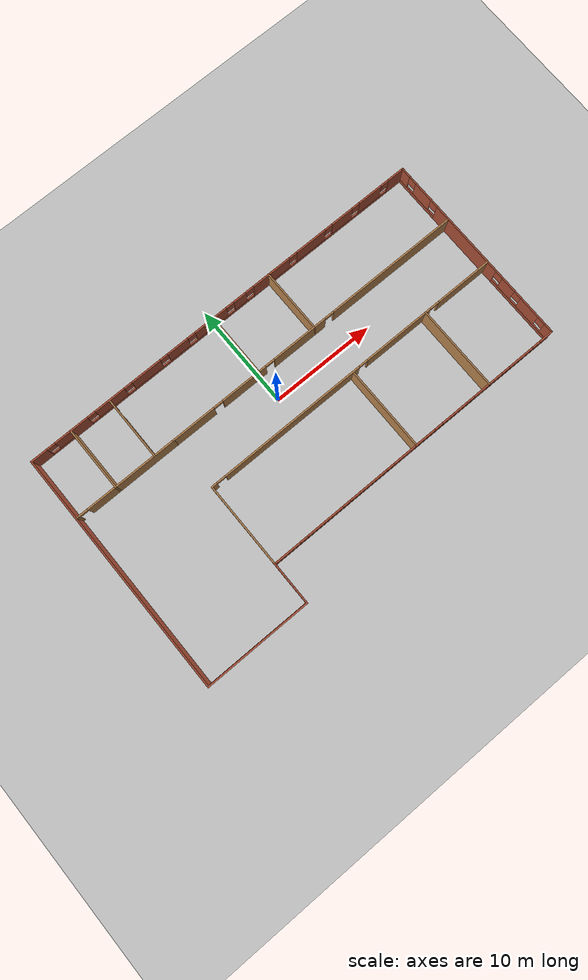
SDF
<sdf version="1.6">
 <world name="default">
  <model name="ground_plane">
   <static>1</static>
   <link name="link">
    <collision name="collision">
     <geometry><plane><normal>0 0 1</normal><size>100 100</size></plane></geometry>
     <surface><friction><ode><mu>100</mu><mu2>50</mu2></ode></friction></surface>
    </collision>
    <visual name="visual">
     <cast_shadows>0</cast_shadows>
     <geometry><plane><normal>0 0 1</normal><size>100 100</size></plane></geometry>
     <material>
      <script><uri>file://media/materials/scripts/gazebo.material</uri><name>Gazebo/Grey</name></script>
     </material>
    </visual>
   </link>
  </model>
  <model name="research_lab">
   <pose>1.02578 -3.01418 0 0 -0 0</pose>
   <link name="Wall_0">
    <pose>5 0.5 0 0 -0 3.14159</pose>
    <visual name="Wall_0_Visual_0">
     <pose>-12.265 0 1.25 0 -0 0</pose>
     <geometry><box><size>5.61997 0.15 2.5</size></box></geometry>
     <material>
      <script><uri>file://media/materials/scripts/gazebo.material</uri><name>Gazebo/Wood</name></script>
      <ambient>0.666667 0.333333 0 1</ambient>
     </material>
     <meta><layer>0</layer></meta>
    </visual>
    <collision name="Wall_0_Collision_0">
     <geometry><box><size>5.61997 0.15 2.5</size></box></geometry>
     <pose>-12.265 0 1.25 0 -0 0</pose>
    </collision>
    <visual name="Wall_0_Visual_1">
     <pose>-5.07203 0 1.25 0 -0 0</pose>
     <geometry><box><size>6.966 0.15 2.5</size></box></geometry>
     <material>
      <script><uri>file://media/materials/scripts/gazebo.material</uri><name>Gazebo/Wood</name></script>
      <ambient>0.666667 0.333333 0 1</ambient>
     </material>
     <meta><layer>0</layer></meta>
    </visual>
    <collision name="Wall_0_Collision_1">
     <geometry><box><size>6.966 0.15 2.5</size></box></geometry>
     <pose>-5.07203 0 1.25 0 -0 0</pose>
    </collision>
    <visual name="Wall_0_Visual_2">
     <pose>6.45097 0 1.25 0 -0 0</pose>
     <geometry><box><size>14.28 0.15 2.5</size></box></geometry>
     <material>
      <script><uri>file://media/materials/scripts/gazebo.material</uri><name>Gazebo/Wood</name></script>
      <ambient>0.666667 0.333333 0 1</ambient>
     </material>
     <meta><layer>0</layer></meta>
    </visual>
    <collision name="Wall_0_Collision_2">
     <geometry><box><size>14.28 0.15 2.5</size></box></geometry>
     <pose>6.45097 0 1.25 0 -0 0</pose>
    </collision>
    <visual name="Wall_0_Visual_3">
     <pose>14.783 0 1.25 0 -0 0</pose>
     <geometry><box><size>0.58403 0.15 2.5</size></box></geometry>
     <material>
      <script><uri>file://media/materials/scripts/gazebo.material</uri><name>Gazebo/Wood</name></script>
      <ambient>0.666667 0.333333 0 1</ambient>
     </material>
     <meta><layer>0</layer></meta>
    </visual>
    <collision name="Wall_0_Collision_3">
     <geometry><box><size>0.58403 0.15 2.5</size></box></geometry>
     <pose>14.783 0 1.25 0 -0 0</pose>
    </collision>
    <visual name="Wall_0_Visual_4">
     <pose>-9.00503 0 2.25 0 -0 0</pose>
     <geometry><box><size>0.9 0.15 0.5</size></box></geometry>
     <material>
      <script><uri>file://media/materials/scripts/gazebo.material</uri><name>Gazebo/Wood</name></script>
      <ambient>0.666667 0.333333 0 1</ambient>
     </material>
     <meta><layer>0</layer></meta>
    </visual>
    <collision name="Wall_0_Collision_4">
     <geometry><box><size>0.9 0.15 0.5</size></box></geometry>
     <pose>-9.00503 0 2.25 0 -0 0</pose>
    </collision>
    <visual name="Wall_0_Visual_5">
     <pose>-1.13903 0 2.25 0 -0 0</pose>
     <geometry><box><size>0.9 0.15 0.5</size></box></geometry>
     <material>
      <script><uri>file://media/materials/scripts/gazebo.material</uri><name>Gazebo/Wood</name></script>
      <ambient>0.666667 0.333333 0 1</ambient>
     </material>
     <meta><layer>0</layer></meta>
    </visual>
    <collision name="Wall_0_Collision_5">
     <geometry><box><size>0.9 0.15 0.5</size></box></geometry>
     <pose>-1.13903 0 2.25 0 -0 0</pose>
    </collision>
    <visual name="Wall_0_Visual_6">
     <pose>14.041 0 2.25 0 -0 0</pose>
     <geometry><box><size>0.9 0.15 0.5</size></box></geometry>
     <material>
      <script><uri>file://media/materials/scripts/gazebo.material</uri><name>Gazebo/Wood</name></script>
      <ambient>0.666667 0.333333 0 1</ambient>
     </material>
     <meta><layer>0</layer></meta>
    </visual>
    <collision name="Wall_0_Collision_6">
     <geometry><box><size>0.9 0.15 0.5</size></box></geometry>
     <pose>14.041 0 2.25 0 -0 0</pose>
    </collision>
   </link>
   <link name="Wall_10">
    <pose>16.5 -7.5 0 0 -0 3.14159</pose>
    <visual name="Wall_10_Visual_0">
     <pose>-2.84774 0 1.25 0 -0 0</pose>
     <geometry><box><size>1.45451 0.15 2.5</size></box></geometry>
     <material>
      <script><uri>file://media/materials/scripts/gazebo.material</uri><name>Gazebo/Bricks</name></script>
      <ambient>1 1 1 1</ambient>
     </material>
     <meta><layer>0</layer></meta>
    </visual>
    <collision name="Wall_10_Collision_0">
     <geometry><box><size>1.45451 0.15 2.5</size></box></geometry>
     <pose>-2.84774 0 1.25 0 -0 0</pose>
    </collision>
    <visual name="Wall_10_Visual_1">
     <pose>0.727257 0 0.25 0 -0 0</pose>
     <geometry><box><size>5.69549 0.15 0.5</size></box></geometry>
     <material>
      <script><uri>file://media/materials/scripts/gazebo.material</uri><name>Gazebo/Bricks</name></script>
      <ambient>1 1 1 1</ambient>
     </material>
     <meta><layer>0</layer></meta>
    </visual>
    <collision name="Wall_10_Collision_1">
     <geometry><box><size>5.69549 0.15 0.5</size></box></geometry>
     <pose>0.727257 0 0.25 0 -0 0</pose>
    </collision>
    <visual name="Wall_10_Visual_2">
     <pose>-0.041486 0 1.5 0 -0 0</pose>
     <geometry><box><size>2.558 0.15 2</size></box></geometry>
     <material>
      <script><uri>file://media/materials/scripts/gazebo.material</uri><name>Gazebo/Bricks</name></script>
      <ambient>1 1 1 1</ambient>
     </material>
     <meta><layer>0</layer></meta>
    </visual>
    <collision name="Wall_10_Collision_2">
     <geometry><box><size>2.558 0.15 2</size></box></geometry>
     <pose>-0.041486 0 1.5 0 -0 0</pose>
    </collision>
    <visual name="Wall_10_Visual_3">
     <pose>2.80626 0 1.5 0 -0 0</pose>
     <geometry><box><size>1.53749 0.15 2</size></box></geometry>
     <material>
      <script><uri>file://media/materials/scripts/gazebo.material</uri><name>Gazebo/Bricks</name></script>
      <ambient>1 1 1 1</ambient>
     </material>
     <meta><layer>0</layer></meta>
    </visual>
    <collision name="Wall_10_Collision_3">
     <geometry><box><size>1.53749 0.15 2</size></box></geometry>
     <pose>2.80626 0 1.5 0 -0 0</pose>
    </collision>
    <visual name="Wall_10_Visual_4">
     <pose>-1.72049 0 1.9 0 -0 0</pose>
     <geometry><box><size>0.8 0.15 1.2</size></box></geometry>
     <material>
      <script><uri>file://media/materials/scripts/gazebo.material</uri><name>Gazebo/Bricks</name></script>
      <ambient>1 1 1 1</ambient>
     </material>
     <meta><layer>0</layer></meta>
    </visual>
    <collision name="Wall_10_Collision_4">
     <geometry><box><size>0.8 0.15 1.2</size></box></geometry>
     <pose>-1.72049 0 1.9 0 -0 0</pose>
    </collision>
    <visual name="Wall_10_Visual_5">
     <pose>1.63751 0 1.9 0 -0 0</pose>
     <geometry><box><size>0.8 0.15 1.2</size></box></geometry>
     <material>
      <script><uri>file://media/materials/scripts/gazebo.material</uri><name>Gazebo/Bricks</name></script>
      <ambient>1 1 1 1</ambient>
     </material>
     <meta><layer>0</layer></meta>
    </visual>
    <collision name="Wall_10_Collision_5">
     <geometry><box><size>0.8 0.15 1.2</size></box></geometry>
     <pose>1.63751 0 1.9 0 -0 0</pose>
    </collision>
   </link>
   <link name="Wall_11">
    <collision name="Wall_11_Collision">
     <geometry><box><size>8.15 0.15 2.5</size></box></geometry>
     <pose>0 0 1.25 0 -0 0</pose>
    </collision>
    <visual name="Wall_11_Visual">
     <pose>0 0 1.25 0 -0 0</pose>
     <geometry><box><size>8.15 0.15 2.5</size></box></geometry>
     <material>
      <script><uri>file://media/materials/scripts/gazebo.material</uri><name>Gazebo/Wood</name></script>
      <ambient>1 1 1 1</ambient>
     </material>
     <meta><layer>0</layer></meta>
    </visual>
    <pose>13 -3.5 0 0 -0 1.5708</pose>
   </link>
   <link name="Wall_13">
    <pose>9 -7.5 0 0 -0 3.14159</pose>
    <visual name="Wall_13_Visual_0">
     <pose>-3.21374 0 1.25 0 -0 0</pose>
     <geometry><box><size>1.72251 0.15 2.5</size></box></geometry>
     <material>
      <script><uri>file://media/materials/scripts/gazebo.material</uri><name>Gazebo/Bricks</name></script>
      <ambient>1 1 1 1</ambient>
     </material>
     <meta><layer>0</layer></meta>
    </visual>
    <collision name="Wall_13_Collision_0">
     <geometry><box><size>1.72251 0.15 2.5</size></box></geometry>
     <pose>-3.21374 0 1.25 0 -0 0</pose>
    </collision>
    <visual name="Wall_13_Visual_1">
     <pose>0.861257 0 0.25 0 -0 0</pose>
     <geometry><box><size>6.42749 0.15 0.5</size></box></geometry>
     <material>
      <script><uri>file://media/materials/scripts/gazebo.material</uri><name>Gazebo/Bricks</name></script>
      <ambient>1 1 1 1</ambient>
     </material>
     <meta><layer>0</layer></meta>
    </visual>
    <collision name="Wall_13_Collision_1">
     <geometry><box><size>6.42749 0.15 0.5</size></box></geometry>
     <pose>0.861257 0 0.25 0 -0 0</pose>
    </collision>
    <visual name="Wall_13_Visual_2">
     <pose>-0.204486 0 1.5 0 -0 0</pose>
     <geometry><box><size>2.696 0.15 2</size></box></geometry>
     <material>
      <script><uri>file://media/materials/scripts/gazebo.material</uri><name>Gazebo/Bricks</name></script>
      <ambient>1 1 1 1</ambient>
     </material>
     <meta><layer>0</layer></meta>
    </visual>
    <collision name="Wall_13_Collision_2">
     <geometry><box><size>2.696 0.15 2</size></box></geometry>
     <pose>-0.204486 0 1.5 0 -0 0</pose>
    </collision>
    <visual name="Wall_13_Visual_3">
     <pose>3.00926 0 1.5 0 -0 0</pose>
     <geometry><box><size>2.13149 0.15 2</size></box></geometry>
     <material>
      <script><uri>file://media/materials/scripts/gazebo.material</uri><name>Gazebo/Bricks</name></script>
      <ambient>1 1 1 1</ambient>
     </material>
     <meta><layer>0</layer></meta>
    </visual>
    <collision name="Wall_13_Collision_3">
     <geometry><box><size>2.13149 0.15 2</size></box></geometry>
     <pose>3.00926 0 1.5 0 -0 0</pose>
    </collision>
    <visual name="Wall_13_Visual_4">
     <pose>-1.95249 0 1.9 0 -0 0</pose>
     <geometry><box><size>0.8 0.15 1.2</size></box></geometry>
     <material>
      <script><uri>file://media/materials/scripts/gazebo.material</uri><name>Gazebo/Bricks</name></script>
      <ambient>1 1 1 1</ambient>
     </material>
     <meta><layer>0</layer></meta>
    </visual>
    <collision name="Wall_13_Collision_4">
     <geometry><box><size>0.8 0.15 1.2</size></box></geometry>
     <pose>-1.95249 0 1.9 0 -0 0</pose>
    </collision>
    <visual name="Wall_13_Visual_5">
     <pose>1.54351 0 1.9 0 -0 0</pose>
     <geometry><box><size>0.8 0.15 1.2</size></box></geometry>
     <material>
      <script><uri>file://media/materials/scripts/gazebo.material</uri><name>Gazebo/Bricks</name></script>
      <ambient>1 1 1 1</ambient>
     </material>
     <meta><layer>0</layer></meta>
    </visual>
    <collision name="Wall_13_Collision_5">
     <geometry><box><size>0.8 0.15 1.2</size></box></geometry>
     <pose>1.54351 0 1.9 0 -0 0</pose>
    </collision>
   </link>
   <link name="Wall_14">
    <collision name="Wall_14_Collision">
     <geometry><box><size>8.15 0.15 2.5</size></box></geometry>
     <pose>0 0 1.25 0 -0 0</pose>
    </collision>
    <visual name="Wall_14_Visual">
     <pose>0 0 1.25 0 -0 0</pose>
     <geometry><box><size>8.15 0.15 2.5</size></box></geometry>
     <material>
      <script><uri>file://media/materials/scripts/gazebo.material</uri><name>Gazebo/Wood</name></script>
      <ambient>1 1 1 1</ambient>
     </material>
     <meta><layer>0</layer></meta>
    </visual>
    <pose>5 -3.5 0 0 -0 1.5708</pose>
   </link>
   <link name="Wall_16">
    <pose>-2.5 -7.5 0 0 -0 3.14159</pose>
    <visual name="Wall_16_Visual_0">
     <pose>-6.32074 0 1.25 0 -0 0</pose>
     <geometry><box><size>2.50851 0.15 2.5</size></box></geometry>
     <material>
      <script><uri>file://media/materials/scripts/gazebo.material</uri><name>Gazebo/Bricks</name></script>
      <ambient>0.666667 0.333333 0 1</ambient>
     </material>
     <meta><layer>0</layer></meta>
    </visual>
    <collision name="Wall_16_Collision_0">
     <geometry><box><size>2.50851 0.15 2.5</size></box></geometry>
     <pose>-6.32074 0 1.25 0 -0 0</pose>
    </collision>
    <visual name="Wall_16_Visual_1">
     <pose>1.25426 0 0.25 0 -0 0</pose>
     <geometry><box><size>12.6415 0.15 0.5</size></box></geometry>
     <material>
      <script><uri>file://media/materials/scripts/gazebo.material</uri><name>Gazebo/Bricks</name></script>
      <ambient>0.666667 0.333333 0 1</ambient>
     </material>
     <meta><layer>0</layer></meta>
    </visual>
    <collision name="Wall_16_Collision_1">
     <geometry><box><size>12.6415 0.15 0.5</size></box></geometry>
     <pose>1.25426 0 0.25 0 -0 0</pose>
    </collision>
    <visual name="Wall_16_Visual_2">
     <pose>-2.34349 0 1.5 0 -0 0</pose>
     <geometry><box><size>3.846 0.15 2</size></box></geometry>
     <material>
      <script><uri>file://media/materials/scripts/gazebo.material</uri><name>Gazebo/Bricks</name></script>
      <ambient>0.666667 0.333333 0 1</ambient>
     </material>
     <meta><layer>0</layer></meta>
    </visual>
    <collision name="Wall_16_Collision_2">
     <geometry><box><size>3.846 0.15 2</size></box></geometry>
     <pose>-2.34349 0 1.5 0 -0 0</pose>
    </collision>
    <visual name="Wall_16_Visual_3">
     <pose>2.23351 0 1.5 0 -0 0</pose>
     <geometry><box><size>3.708 0.15 2</size></box></geometry>
     <material>
      <script><uri>file://media/materials/scripts/gazebo.material</uri><name>Gazebo/Bricks</name></script>
      <ambient>0.666667 0.333333 0 1</ambient>
     </material>
     <meta><layer>0</layer></meta>
    </visual>
    <collision name="Wall_16_Collision_3">
     <geometry><box><size>3.708 0.15 2</size></box></geometry>
     <pose>2.23351 0 1.5 0 -0 0</pose>
    </collision>
    <visual name="Wall_16_Visual_4">
     <pose>6.23126 0 1.5 0 -0 0</pose>
     <geometry><box><size>2.68749 0.15 2</size></box></geometry>
     <material>
      <script><uri>file://media/materials/scripts/gazebo.material</uri><name>Gazebo/Bricks</name></script>
      <ambient>0.666667 0.333333 0 1</ambient>
     </material>
     <meta><layer>0</layer></meta>
    </visual>
    <collision name="Wall_16_Collision_4">
     <geometry><box><size>2.68749 0.15 2</size></box></geometry>
     <pose>6.23126 0 1.5 0 -0 0</pose>
    </collision>
    <visual name="Wall_16_Visual_5">
     <pose>-4.66649 0 1.9 0 -0 0</pose>
     <geometry><box><size>0.8 0.15 1.2</size></box></geometry>
     <material>
      <script><uri>file://media/materials/scripts/gazebo.material</uri><name>Gazebo/Bricks</name></script>
      <ambient>0.666667 0.333333 0 1</ambient>
     </material>
     <meta><layer>0</layer></meta>
    </visual>
    <collision name="Wall_16_Collision_5">
     <geometry><box><size>0.8 0.15 1.2</size></box></geometry>
     <pose>-4.66649 0 1.9 0 -0 0</pose>
    </collision>
    <visual name="Wall_16_Visual_6">
     <pose>-0.020487 0 1.9 0 -0 0</pose>
     <geometry><box><size>0.8 0.15 1.2</size></box></geometry>
     <material>
      <script><uri>file://media/materials/scripts/gazebo.material</uri><name>Gazebo/Bricks</name></script>
      <ambient>0.666667 0.333333 0 1</ambient>
     </material>
     <meta><layer>0</layer></meta>
    </visual>
    <collision name="Wall_16_Collision_6">
     <geometry><box><size>0.8 0.15 1.2</size></box></geometry>
     <pose>-0.020487 0 1.9 0 -0 0</pose>
    </collision>
    <visual name="Wall_16_Visual_7">
     <pose>4.48751 0 1.9 0 -0 0</pose>
     <geometry><box><size>0.8 0.15 1.2</size></box></geometry>
     <material>
      <script><uri>file://media/materials/scripts/gazebo.material</uri><name>Gazebo/Bricks</name></script>
      <ambient>0.666667 0.333333 0 1</ambient>
     </material>
     <meta><layer>0</layer></meta>
    </visual>
    <collision name="Wall_16_Collision_7">
     <geometry><box><size>0.8 0.15 1.2</size></box></geometry>
     <pose>4.48751 0 1.9 0 -0 0</pose>
    </collision>
   </link>
   <link name="Wall_17">
    <collision name="Wall_17_Collision">
     <geometry><box><size>8.15 0.15 2.5</size></box></geometry>
     <pose>0 0 1.25 0 -0 0</pose>
    </collision>
    <visual name="Wall_17_Visual">
     <pose>0 0 1.25 0 -0 0</pose>
     <geometry><box><size>8.15 0.15 2.5</size></box></geometry>
     <material>
      <script><uri>file://media/materials/scripts/gazebo.material</uri><name>Gazebo/Wood</name></script>
      <ambient>0.666667 0.333333 0 1</ambient>
     </material>
     <meta><layer>0</layer></meta>
    </visual>
    <pose>-10 -3.5 0 0 -0 1.5708</pose>
   </link>
   <link name="Wall_19">
    <pose>-15 5.5 0 0 -0 3.14159</pose>
    <visual name="Wall_19_Visual_0">
     <pose>-0.621116 0 1.25 0 -0 0</pose>
     <geometry><box><size>8.90777 0.15 2.5</size></box></geometry>
     <material>
      <script><uri>file://media/materials/scripts/gazebo.material</uri><name>Gazebo/Wood</name></script>
      <ambient>1 1 1 1</ambient>
     </material>
     <meta><layer>0</layer></meta>
    </visual>
    <collision name="Wall_19_Collision_0">
     <geometry><box><size>8.90777 0.15 2.5</size></box></geometry>
     <pose>-0.621116 0 1.25 0 -0 0</pose>
    </collision>
    <visual name="Wall_19_Visual_1">
     <pose>4.90388 0 1.25 0 -0 0</pose>
     <geometry><box><size>0.342232 0.15 2.5</size></box></geometry>
     <material>
      <script><uri>file://media/materials/scripts/gazebo.material</uri><name>Gazebo/Wood</name></script>
      <ambient>1 1 1 1</ambient>
     </material>
     <meta><layer>0</layer></meta>
    </visual>
    <collision name="Wall_19_Collision_1">
     <geometry><box><size>0.342232 0.15 2.5</size></box></geometry>
     <pose>4.90388 0 1.25 0 -0 0</pose>
    </collision>
    <visual name="Wall_19_Visual_2">
     <pose>4.28277 0 2.25 0 -0 0</pose>
     <geometry><box><size>0.9 0.15 0.5</size></box></geometry>
     <material>
      <script><uri>file://media/materials/scripts/gazebo.material</uri><name>Gazebo/Wood</name></script>
      <ambient>1 1 1 1</ambient>
     </material>
     <meta><layer>0</layer></meta>
    </visual>
    <collision name="Wall_19_Collision_2">
     <geometry><box><size>0.9 0.15 0.5</size></box></geometry>
     <pose>4.28277 0 2.25 0 -0 0</pose>
    </collision>
   </link>
   <link name="Wall_20">
    <collision name="Wall_20_Collision">
     <geometry><box><size>17.15 0.15 2.5</size></box></geometry>
     <pose>0 0 1.25 0 -0 0</pose>
    </collision>
    <visual name="Wall_20_Visual">
     <pose>0 0 1.25 0 -0 0</pose>
     <geometry><box><size>17.15 0.15 2.5</size></box></geometry>
     <material>
      <script><uri>file://media/materials/scripts/gazebo.material</uri><name>Gazebo/Bricks</name></script>
      <ambient>1 1 1 1</ambient>
     </material>
     <meta><layer>0</layer></meta>
    </visual>
    <pose>-20 -3 0 0 0 -1.5708</pose>
   </link>
   <link name="Wall_21">
    <collision name="Wall_21_Collision">
     <geometry><box><size>10.15 0.15 2.5</size></box></geometry>
     <pose>0 0 1.25 0 -0 0</pose>
    </collision>
    <visual name="Wall_21_Visual">
     <pose>0 0 1.25 0 -0 0</pose>
     <geometry><box><size>10.15 0.15 2.5</size></box></geometry>
     <material>
      <script><uri>file://media/materials/scripts/gazebo.material</uri><name>Gazebo/Bricks</name></script>
      <ambient>0.666667 0.333333 0 1</ambient>
     </material>
     <meta><layer>0</layer></meta>
    </visual>
    <pose>-15 -11.5 0 0 -0 0</pose>
   </link>
   <link name="Wall_24">
    <pose>20 8.5 0 0 -0 1.5708</pose>
    <visual name="Wall_24_Visual_0">
     <pose>-2.30754 0 1.25 0 -0 0</pose>
     <geometry><box><size>1.53492 0.15 2.5</size></box></geometry>
     <material>
      <script><uri>file://media/materials/scripts/gazebo.material</uri><name>Gazebo/Bricks</name></script>
      <ambient>1 1 1 1</ambient>
     </material>
     <meta><layer>0</layer></meta>
    </visual>
    <collision name="Wall_24_Collision_0">
     <geometry><box><size>1.53492 0.15 2.5</size></box></geometry>
     <pose>-2.30754 0 1.25 0 -0 0</pose>
    </collision>
    <visual name="Wall_24_Visual_1">
     <pose>0.76746 0 0.25 0 -0 0</pose>
     <geometry><box><size>4.61508 0.15 0.5</size></box></geometry>
     <material>
      <script><uri>file://media/materials/scripts/gazebo.material</uri><name>Gazebo/Bricks</name></script>
      <ambient>1 1 1 1</ambient>
     </material>
     <meta><layer>0</layer></meta>
    </visual>
    <collision name="Wall_24_Collision_1">
     <geometry><box><size>4.61508 0.15 0.5</size></box></geometry>
     <pose>0.76746 0 0.25 0 -0 0</pose>
    </collision>
    <visual name="Wall_24_Visual_2">
     <pose>0.23992 0 1.5 0 -0 0</pose>
     <geometry><box><size>1.96 0.15 2</size></box></geometry>
     <material>
      <script><uri>file://media/materials/scripts/gazebo.material</uri><name>Gazebo/Bricks</name></script>
      <ambient>1 1 1 1</ambient>
     </material>
     <meta><layer>0</layer></meta>
    </visual>
    <collision name="Wall_24_Collision_2">
     <geometry><box><size>1.96 0.15 2</size></box></geometry>
     <pose>0.23992 0 1.5 0 -0 0</pose>
    </collision>
    <visual name="Wall_24_Visual_3">
     <pose>2.54746 0 1.5 0 -0 0</pose>
     <geometry><box><size>1.05508 0.15 2</size></box></geometry>
     <material>
      <script><uri>file://media/materials/scripts/gazebo.material</uri><name>Gazebo/Bricks</name></script>
      <ambient>1 1 1 1</ambient>
     </material>
     <meta><layer>0</layer></meta>
    </visual>
    <collision name="Wall_24_Collision_3">
     <geometry><box><size>1.05508 0.15 2</size></box></geometry>
     <pose>2.54746 0 1.5 0 -0 0</pose>
    </collision>
    <visual name="Wall_24_Visual_4">
     <pose>-1.14008 0 1.9 0 -0 0</pose>
     <geometry><box><size>0.8 0.15 1.2</size></box></geometry>
     <material>
      <script><uri>file://media/materials/scripts/gazebo.material</uri><name>Gazebo/Bricks</name></script>
      <ambient>1 1 1 1</ambient>
     </material>
     <meta><layer>0</layer></meta>
    </visual>
    <collision name="Wall_24_Collision_4">
     <geometry><box><size>0.8 0.15 1.2</size></box></geometry>
     <pose>-1.14008 0 1.9 0 -0 0</pose>
    </collision>
    <visual name="Wall_24_Visual_5">
     <pose>1.61992 0 1.9 0 -0 0</pose>
     <geometry><box><size>0.8 0.15 1.2</size></box></geometry>
     <material>
      <script><uri>file://media/materials/scripts/gazebo.material</uri><name>Gazebo/Bricks</name></script>
      <ambient>1 1 1 1</ambient>
     </material>
     <meta><layer>0</layer></meta>
    </visual>
    <collision name="Wall_24_Collision_5">
     <geometry><box><size>0.8 0.15 1.2</size></box></geometry>
     <pose>1.61992 0 1.9 0 -0 0</pose>
    </collision>
   </link>
   <link name="Wall_25">
    <pose>12.5 11.5 0 0 -0 3.14159</pose>
    <visual name="Wall_25_Visual_0">
     <pose>-6.70094 0 1.25 0 -0 0</pose>
     <geometry><box><size>1.74813 0.15 2.5</size></box></geometry>
     <material>
      <script><uri>file://media/materials/scripts/gazebo.material</uri><name>Gazebo/Bricks</name></script>
      <ambient>1 1 1 1</ambient>
     </material>
     <meta><layer>0</layer></meta>
    </visual>
    <collision name="Wall_25_Collision_0">
     <geometry><box><size>1.74813 0.15 2.5</size></box></geometry>
     <pose>-6.70094 0 1.25 0 -0 0</pose>
    </collision>
    <visual name="Wall_25_Visual_1">
     <pose>0.874063 0 0.25 0 -0 0</pose>
     <geometry><box><size>13.4019 0.15 0.5</size></box></geometry>
     <material>
      <script><uri>file://media/materials/scripts/gazebo.material</uri><name>Gazebo/Bricks</name></script>
      <ambient>1 1 1 1</ambient>
     </material>
     <meta><layer>0</layer></meta>
    </visual>
    <collision name="Wall_25_Collision_1">
     <geometry><box><size>13.4019 0.15 0.5</size></box></geometry>
     <pose>0.874063 0 0.25 0 -0 0</pose>
    </collision>
    <visual name="Wall_25_Visual_2">
     <pose>-3.78433 0 1.5 0 -0 0</pose>
     <geometry><box><size>2.48509 0.15 2</size></box></geometry>
     <material>
      <script><uri>file://media/materials/scripts/gazebo.material</uri><name>Gazebo/Bricks</name></script>
      <ambient>1 1 1 1</ambient>
     </material>
     <meta><layer>0</layer></meta>
    </visual>
    <collision name="Wall_25_Collision_2">
     <geometry><box><size>2.48509 0.15 2</size></box></geometry>
     <pose>-3.78433 0 1.5 0 -0 0</pose>
    </collision>
    <visual name="Wall_25_Visual_3">
     <pose>-0.620908 0 1.5 0 -0 0</pose>
     <geometry><box><size>2.24175 0.15 2</size></box></geometry>
     <material>
      <script><uri>file://media/materials/scripts/gazebo.material</uri><name>Gazebo/Bricks</name></script>
      <ambient>1 1 1 1</ambient>
     </material>
     <meta><layer>0</layer></meta>
    </visual>
    <collision name="Wall_25_Collision_3">
     <geometry><box><size>2.24175 0.15 2</size></box></geometry>
     <pose>-0.620908 0 1.5 0 -0 0</pose>
    </collision>
    <visual name="Wall_25_Visual_4">
     <pose>2.8771 0 1.5 0 -0 0</pose>
     <geometry><box><size>3.15428 0.15 2</size></box></geometry>
     <material>
      <script><uri>file://media/materials/scripts/gazebo.material</uri><name>Gazebo/Bricks</name></script>
      <ambient>1 1 1 1</ambient>
     </material>
     <meta><layer>0</layer></meta>
    </visual>
    <collision name="Wall_25_Collision_4">
     <geometry><box><size>3.15428 0.15 2</size></box></geometry>
     <pose>2.8771 0 1.5 0 -0 0</pose>
    </collision>
    <visual name="Wall_25_Visual_5">
     <pose>6.41462 0 1.5 0 -0 0</pose>
     <geometry><box><size>2.32076 0.15 2</size></box></geometry>
     <material>
      <script><uri>file://media/materials/scripts/gazebo.material</uri><name>Gazebo/Bricks</name></script>
      <ambient>1 1 1 1</ambient>
     </material>
     <meta><layer>0</layer></meta>
    </visual>
    <collision name="Wall_25_Collision_5">
     <geometry><box><size>2.32076 0.15 2</size></box></geometry>
     <pose>6.41462 0 1.5 0 -0 0</pose>
    </collision>
    <visual name="Wall_25_Visual_6">
     <pose>-5.42687 0 1.9 0 -0 0</pose>
     <geometry><box><size>0.8 0.15 1.2</size></box></geometry>
     <material>
      <script><uri>file://media/materials/scripts/gazebo.material</uri><name>Gazebo/Bricks</name></script>
      <ambient>1 1 1 1</ambient>
     </material>
     <meta><layer>0</layer></meta>
    </visual>
    <collision name="Wall_25_Collision_6">
     <geometry><box><size>0.8 0.15 1.2</size></box></geometry>
     <pose>-5.42687 0 1.9 0 -0 0</pose>
    </collision>
    <visual name="Wall_25_Visual_7">
     <pose>-2.14178 0 1.9 0 -0 0</pose>
     <geometry><box><size>0.8 0.15 1.2</size></box></geometry>
     <material>
      <script><uri>file://media/materials/scripts/gazebo.material</uri><name>Gazebo/Bricks</name></script>
      <ambient>1 1 1 1</ambient>
     </material>
     <meta><layer>0</layer></meta>
    </visual>
    <collision name="Wall_25_Collision_7">
     <geometry><box><size>0.8 0.15 1.2</size></box></geometry>
     <pose>-2.14178 0 1.9 0 -0 0</pose>
    </collision>
    <visual name="Wall_25_Visual_8">
     <pose>0.899966 0 1.9 0 -0 0</pose>
     <geometry><box><size>0.8 0.15 1.2</size></box></geometry>
     <material>
      <script><uri>file://media/materials/scripts/gazebo.material</uri><name>Gazebo/Bricks</name></script>
      <ambient>1 1 1 1</ambient>
     </material>
     <meta><layer>0</layer></meta>
    </visual>
    <collision name="Wall_25_Collision_8">
     <geometry><box><size>0.8 0.15 1.2</size></box></geometry>
     <pose>0.899966 0 1.9 0 -0 0</pose>
    </collision>
    <visual name="Wall_25_Visual_9">
     <pose>4.85424 0 1.9 0 -0 0</pose>
     <geometry><box><size>0.8 0.15 1.2</size></box></geometry>
     <material>
      <script><uri>file://media/materials/scripts/gazebo.material</uri><name>Gazebo/Bricks</name></script>
      <ambient>1 1 1 1</ambient>
     </material>
     <meta><layer>0</layer></meta>
    </visual>
    <collision name="Wall_25_Collision_9">
     <geometry><box><size>0.8 0.15 1.2</size></box></geometry>
     <pose>4.85424 0 1.9 0 -0 0</pose>
    </collision>
   </link>
   <link name="Wall_26">
    <collision name="Wall_26_Collision">
     <geometry><box><size>6.15 0.15 2.5</size></box></geometry>
     <pose>0 0 1.25 0 -0 0</pose>
    </collision>
    <visual name="Wall_26_Visual">
     <pose>0 0 1.25 0 -0 0</pose>
     <geometry><box><size>6.15 0.15 2.5</size></box></geometry>
     <material>
      <script><uri>file://media/materials/scripts/gazebo.material</uri><name>Gazebo/Wood</name></script>
      <ambient>1 1 1 1</ambient>
     </material>
     <meta><layer>0</layer></meta>
    </visual>
    <pose>5 8.5 0 0 0 -1.5708</pose>
   </link>
   <link name="Wall_28">
    <pose>2 11.5 0 0 -0 3.14159</pose>
    <visual name="Wall_28_Visual_0">
     <pose>-2.18782 0 1.25 0 -0 0</pose>
     <geometry><box><size>1.77437 0.15 2.5</size></box></geometry>
     <material>
      <script><uri>file://media/materials/scripts/gazebo.material</uri><name>Gazebo/Bricks</name></script>
      <ambient>1 1 1 1</ambient>
     </material>
     <meta><layer>0</layer></meta>
    </visual>
    <collision name="Wall_28_Collision_0">
     <geometry><box><size>1.77437 0.15 2.5</size></box></geometry>
     <pose>-2.18782 0 1.25 0 -0 0</pose>
    </collision>
    <visual name="Wall_28_Visual_1">
     <pose>0.887185 0 0.25 0 -0 0</pose>
     <geometry><box><size>4.37563 0.15 0.5</size></box></geometry>
     <material>
      <script><uri>file://media/materials/scripts/gazebo.material</uri><name>Gazebo/Bricks</name></script>
      <ambient>1 1 1 1</ambient>
     </material>
     <meta><layer>0</layer></meta>
    </visual>
    <collision name="Wall_28_Collision_1">
     <geometry><box><size>4.37563 0.15 0.5</size></box></geometry>
     <pose>0.887185 0 0.25 0 -0 0</pose>
    </collision>
    <visual name="Wall_28_Visual_2">
     <pose>0.163984 0 1.5 0 -0 0</pose>
     <geometry><box><size>1.32923 0.15 2</size></box></geometry>
     <material>
      <script><uri>file://media/materials/scripts/gazebo.material</uri><name>Gazebo/Bricks</name></script>
      <ambient>1 1 1 1</ambient>
     </material>
     <meta><layer>0</layer></meta>
    </visual>
    <collision name="Wall_28_Collision_2">
     <geometry><box><size>1.32923 0.15 2</size></box></geometry>
     <pose>0.163984 0 1.5 0 -0 0</pose>
    </collision>
    <visual name="Wall_28_Visual_3">
     <pose>2.3518 0 1.5 0 -0 0</pose>
     <geometry><box><size>1.4464 0.15 2</size></box></geometry>
     <material>
      <script><uri>file://media/materials/scripts/gazebo.material</uri><name>Gazebo/Bricks</name></script>
      <ambient>1 1 1 1</ambient>
     </material>
     <meta><layer>0</layer></meta>
    </visual>
    <collision name="Wall_28_Collision_3">
     <geometry><box><size>1.4464 0.15 2</size></box></geometry>
     <pose>2.3518 0 1.5 0 -0 0</pose>
    </collision>
    <visual name="Wall_28_Visual_4">
     <pose>-0.900629 0 1.9 0 -0 0</pose>
     <geometry><box><size>0.8 0.15 1.2</size></box></geometry>
     <material>
      <script><uri>file://media/materials/scripts/gazebo.material</uri><name>Gazebo/Bricks</name></script>
      <ambient>1 1 1 1</ambient>
     </material>
     <meta><layer>0</layer></meta>
    </visual>
    <collision name="Wall_28_Collision_4">
     <geometry><box><size>0.8 0.15 1.2</size></box></geometry>
     <pose>-0.900629 0 1.9 0 -0 0</pose>
    </collision>
    <visual name="Wall_28_Visual_5">
     <pose>1.2286 0 1.9 0 -0 0</pose>
     <geometry><box><size>0.8 0.15 1.2</size></box></geometry>
     <material>
      <script><uri>file://media/materials/scripts/gazebo.material</uri><name>Gazebo/Bricks</name></script>
      <ambient>1 1 1 1</ambient>
     </material>
     <meta><layer>0</layer></meta>
    </visual>
    <collision name="Wall_28_Collision_5">
     <geometry><box><size>0.8 0.15 1.2</size></box></geometry>
     <pose>1.2286 0 1.9 0 -0 0</pose>
    </collision>
   </link>
   <link name="Wall_29">
    <collision name="Wall_29_Collision">
     <geometry><box><size>6.15 0.15 2.5</size></box></geometry>
     <pose>0 0 1.25 0 -0 0</pose>
    </collision>
    <visual name="Wall_29_Visual">
     <pose>0 0 1.25 0 -0 0</pose>
     <geometry><box><size>6.15 0.15 2.5</size></box></geometry>
     <material>
      <script><uri>file://media/materials/scripts/gazebo.material</uri><name>Gazebo/Wood</name></script>
      <ambient>1 1 1 1</ambient>
     </material>
     <meta><layer>0</layer></meta>
    </visual>
    <pose>-1 8.5 0 0 0 -1.5708</pose>
   </link>
   <link name="Wall_3">
    <pose>5 5.5 0 0 -0 0</pose>
    <visual name="Wall_3_Visual_0">
     <pose>-12.92 0 1.25 0 -0 0</pose>
     <geometry><box><size>4.31003 0.15 2.5</size></box></geometry>
     <material>
      <script><uri>file://media/materials/scripts/gazebo.material</uri><name>Gazebo/Wood</name></script>
      <ambient>0.666667 0.333333 0 1</ambient>
     </material>
     <meta><layer>0</layer></meta>
    </visual>
    <collision name="Wall_3_Collision_0">
     <geometry><box><size>4.31003 0.15 2.5</size></box></geometry>
     <pose>-12.92 0 1.25 0 -0 0</pose>
    </collision>
    <visual name="Wall_3_Visual_1">
     <pose>-7.55497 0 1.25 0 -0 0</pose>
     <geometry><box><size>4.62 0.15 2.5</size></box></geometry>
     <material>
      <script><uri>file://media/materials/scripts/gazebo.material</uri><name>Gazebo/Wood</name></script>
      <ambient>0.666667 0.333333 0 1</ambient>
     </material>
     <meta><layer>0</layer></meta>
    </visual>
    <collision name="Wall_3_Collision_1">
     <geometry><box><size>4.62 0.15 2.5</size></box></geometry>
     <pose>-7.55497 0 1.25 0 -0 0</pose>
    </collision>
    <visual name="Wall_3_Visual_2">
     <pose>-1.57497 0 1.25 0 -0 0</pose>
     <geometry><box><size>5.54 0.15 2.5</size></box></geometry>
     <material>
      <script><uri>file://media/materials/scripts/gazebo.material</uri><name>Gazebo/Wood</name></script>
      <ambient>0.666667 0.333333 0 1</ambient>
     </material>
     <meta><layer>0</layer></meta>
    </visual>
    <collision name="Wall_3_Collision_2">
     <geometry><box><size>5.54 0.15 2.5</size></box></geometry>
     <pose>-1.57497 0 1.25 0 -0 0</pose>
    </collision>
    <visual name="Wall_3_Visual_3">
     <pose>8.58502 0 1.25 0 -0 0</pose>
     <geometry><box><size>12.98 0.15 2.5</size></box></geometry>
     <material>
      <script><uri>file://media/materials/scripts/gazebo.material</uri><name>Gazebo/Wood</name></script>
      <ambient>0.666667 0.333333 0 1</ambient>
     </material>
     <meta><layer>0</layer></meta>
    </visual>
    <collision name="Wall_3_Collision_3">
     <geometry><box><size>12.98 0.15 2.5</size></box></geometry>
     <pose>8.58502 0 1.25 0 -0 0</pose>
    </collision>
    <visual name="Wall_3_Visual_4">
     <pose>-10.315 0 2.25 0 -0 0</pose>
     <geometry><box><size>0.9 0.15 0.5</size></box></geometry>
     <material>
      <script><uri>file://media/materials/scripts/gazebo.material</uri><name>Gazebo/Wood</name></script>
      <ambient>0.666667 0.333333 0 1</ambient>
     </material>
     <meta><layer>0</layer></meta>
    </visual>
    <collision name="Wall_3_Collision_4">
     <geometry><box><size>0.9 0.15 0.5</size></box></geometry>
     <pose>-10.315 0 2.25 0 -0 0</pose>
    </collision>
    <visual name="Wall_3_Visual_5">
     <pose>-4.79497 0 2.25 0 -0 0</pose>
     <geometry><box><size>0.9 0.15 0.5</size></box></geometry>
     <material>
      <script><uri>file://media/materials/scripts/gazebo.material</uri><name>Gazebo/Wood</name></script>
      <ambient>0.666667 0.333333 0 1</ambient>
     </material>
     <meta><layer>0</layer></meta>
    </visual>
    <collision name="Wall_3_Collision_5">
     <geometry><box><size>0.9 0.15 0.5</size></box></geometry>
     <pose>-4.79497 0 2.25 0 -0 0</pose>
    </collision>
    <visual name="Wall_3_Visual_6">
     <pose>1.64503 0 2.25 0 -0 0</pose>
     <geometry><box><size>0.9 0.15 0.5</size></box></geometry>
     <material>
      <script><uri>file://media/materials/scripts/gazebo.material</uri><name>Gazebo/Wood</name></script>
      <ambient>0.666667 0.333333 0 1</ambient>
     </material>
     <meta><layer>0</layer></meta>
    </visual>
    <collision name="Wall_3_Collision_6">
     <geometry><box><size>0.9 0.15 0.5</size></box></geometry>
     <pose>1.64503 0 2.25 0 -0 0</pose>
    </collision>
   </link>
   <link name="Wall_31">
    <collision name="Wall_31_Collision">
     <geometry><box><size>6.15 0.15 2.5</size></box></geometry>
     <pose>0 0 1.25 0 -0 0</pose>
    </collision>
    <visual name="Wall_31_Visual">
     <pose>0 0 1.25 0 -0 0</pose>
     <geometry><box><size>6.15 0.15 2.5</size></box></geometry>
     <material>
      <script><uri>file://media/materials/scripts/gazebo.material</uri><name>Gazebo/Bricks</name></script>
      <ambient>1 1 1 1</ambient>
     </material>
     <meta><layer>0</layer></meta>
    </visual>
    <pose>-20 8.5 0 0 -0 1.5708</pose>
   </link>
   <link name="Wall_32">
    <pose>-18 11.5 0 0 -0 0</pose>
    <visual name="Wall_32_Visual_0">
     <pose>-1.25081 0 1.25 0 -0 0</pose>
     <geometry><box><size>1.64839 0.15 2.5</size></box></geometry>
     <material>
      <script><uri>file://media/materials/scripts/gazebo.material</uri><name>Gazebo/Bricks</name></script>
      <ambient>1 1 1 1</ambient>
     </material>
     <meta><layer>0</layer></meta>
    </visual>
    <collision name="Wall_32_Collision_0">
     <geometry><box><size>1.64839 0.15 2.5</size></box></geometry>
     <pose>-1.25081 0 1.25 0 -0 0</pose>
    </collision>
    <visual name="Wall_32_Visual_1">
     <pose>0.824194 0 0.25 0 -0 0</pose>
     <geometry><box><size>2.50161 0.15 0.5</size></box></geometry>
     <material>
      <script><uri>file://media/materials/scripts/gazebo.material</uri><name>Gazebo/Bricks</name></script>
      <ambient>1 1 1 1</ambient>
     </material>
     <meta><layer>0</layer></meta>
    </visual>
    <collision name="Wall_32_Collision_1">
     <geometry><box><size>2.50161 0.15 0.5</size></box></geometry>
     <pose>0.824194 0 0.25 0 -0 0</pose>
    </collision>
    <visual name="Wall_32_Visual_2">
     <pose>1.22419 0 1.5 0 -0 0</pose>
     <geometry><box><size>1.70161 0.15 2</size></box></geometry>
     <material>
      <script><uri>file://media/materials/scripts/gazebo.material</uri><name>Gazebo/Bricks</name></script>
      <ambient>1 1 1 1</ambient>
     </material>
     <meta><layer>0</layer></meta>
    </visual>
    <collision name="Wall_32_Collision_2">
     <geometry><box><size>1.70161 0.15 2</size></box></geometry>
     <pose>1.22419 0 1.5 0 -0 0</pose>
    </collision>
    <visual name="Wall_32_Visual_3">
     <pose>-0.026611 0 1.9 0 -0 0</pose>
     <geometry><box><size>0.8 0.15 1.2</size></box></geometry>
     <material>
      <script><uri>file://media/materials/scripts/gazebo.material</uri><name>Gazebo/Bricks</name></script>
      <ambient>1 1 1 1</ambient>
     </material>
     <meta><layer>0</layer></meta>
    </visual>
    <collision name="Wall_32_Collision_3">
     <geometry><box><size>0.8 0.15 1.2</size></box></geometry>
     <pose>-0.026611 0 1.9 0 -0 0</pose>
    </collision>
   </link>
   <link name="Wall_33">
    <collision name="Wall_33_Collision">
     <geometry><box><size>6.15 0.15 2.5</size></box></geometry>
     <pose>0 0 1.25 0 -0 0</pose>
    </collision>
    <visual name="Wall_33_Visual">
     <pose>0 0 1.25 0 -0 0</pose>
     <geometry><box><size>6.15 0.15 2.5</size></box></geometry>
     <material>
      <script><uri>file://media/materials/scripts/gazebo.material</uri><name>Gazebo/Wood</name></script>
      <ambient>1 1 1 1</ambient>
     </material>
     <meta><layer>0</layer></meta>
    </visual>
    <pose>-16 8.5 0 0 0 -1.5708</pose>
   </link>
   <link name="Wall_35">
    <pose>-8.5 11.5 0 0 -0 0</pose>
    <visual name="Wall_35_Visual_0">
     <pose>-6.68242 0 1.25 0 -0 0</pose>
     <geometry><box><size>1.78517 0.15 2.5</size></box></geometry>
     <material>
      <script><uri>file://media/materials/scripts/gazebo.material</uri><name>Gazebo/Bricks</name></script>
      <ambient>1 1 1 1</ambient>
     </material>
     <meta><layer>0</layer></meta>
    </visual>
    <collision name="Wall_35_Collision_0">
     <geometry><box><size>1.78517 0.15 2.5</size></box></geometry>
     <pose>-6.68242 0 1.25 0 -0 0</pose>
    </collision>
    <visual name="Wall_35_Visual_1">
     <pose>0.892584 0 0.25 0 -0 0</pose>
     <geometry><box><size>13.3648 0.15 0.5</size></box></geometry>
     <material>
      <script><uri>file://media/materials/scripts/gazebo.material</uri><name>Gazebo/Bricks</name></script>
      <ambient>1 1 1 1</ambient>
     </material>
     <meta><layer>0</layer></meta>
    </visual>
    <collision name="Wall_35_Collision_1">
     <geometry><box><size>13.3648 0.15 0.5</size></box></geometry>
     <pose>0.892584 0 0.25 0 -0 0</pose>
    </collision>
    <visual name="Wall_35_Visual_2">
     <pose>-3.47353 0 1.5 0 -0 0</pose>
     <geometry><box><size>3.03261 0.15 2</size></box></geometry>
     <material>
      <script><uri>file://media/materials/scripts/gazebo.material</uri><name>Gazebo/Bricks</name></script>
      <ambient>1 1 1 1</ambient>
     </material>
     <meta><layer>0</layer></meta>
    </visual>
    <collision name="Wall_35_Collision_2">
     <geometry><box><size>3.03261 0.15 2</size></box></geometry>
     <pose>-3.47353 0 1.5 0 -0 0</pose>
    </collision>
    <visual name="Wall_35_Visual_3">
     <pose>0.328658 0 1.5 0 -0 0</pose>
     <geometry><box><size>2.97177 0.15 2</size></box></geometry>
     <material>
      <script><uri>file://media/materials/scripts/gazebo.material</uri><name>Gazebo/Bricks</name></script>
      <ambient>1 1 1 1</ambient>
     </material>
     <meta><layer>0</layer></meta>
    </visual>
    <collision name="Wall_35_Collision_3">
     <geometry><box><size>2.97177 0.15 2</size></box></geometry>
     <pose>0.328658 0 1.5 0 -0 0</pose>
    </collision>
    <visual name="Wall_35_Visual_4">
     <pose>3.67458 0 1.5 0 -0 0</pose>
     <geometry><box><size>2.12008 0.15 2</size></box></geometry>
     <material>
      <script><uri>file://media/materials/scripts/gazebo.material</uri><name>Gazebo/Bricks</name></script>
      <ambient>1 1 1 1</ambient>
     </material>
     <meta><layer>0</layer></meta>
    </visual>
    <collision name="Wall_35_Collision_4">
     <geometry><box><size>2.12008 0.15 2</size></box></geometry>
     <pose>3.67458 0 1.5 0 -0 0</pose>
    </collision>
    <visual name="Wall_35_Visual_5">
     <pose>6.55481 0 1.5 0 -0 0</pose>
     <geometry><box><size>2.04038 0.15 2</size></box></geometry>
     <material>
      <script><uri>file://media/materials/scripts/gazebo.material</uri><name>Gazebo/Bricks</name></script>
      <ambient>1 1 1 1</ambient>
     </material>
     <meta><layer>0</layer></meta>
    </visual>
    <collision name="Wall_35_Collision_5">
     <geometry><box><size>2.04038 0.15 2</size></box></geometry>
     <pose>6.55481 0 1.5 0 -0 0</pose>
    </collision>
    <visual name="Wall_35_Visual_6">
     <pose>-5.38983 0 1.9 0 -0 0</pose>
     <geometry><box><size>0.8 0.15 1.2</size></box></geometry>
     <material>
      <script><uri>file://media/materials/scripts/gazebo.material</uri><name>Gazebo/Bricks</name></script>
      <ambient>1 1 1 1</ambient>
     </material>
     <meta><layer>0</layer></meta>
    </visual>
    <collision name="Wall_35_Collision_6">
     <geometry><box><size>0.8 0.15 1.2</size></box></geometry>
     <pose>-5.38983 0 1.9 0 -0 0</pose>
    </collision>
    <visual name="Wall_35_Visual_7">
     <pose>-1.55723 0 1.9 0 -0 0</pose>
     <geometry><box><size>0.8 0.15 1.2</size></box></geometry>
     <material>
      <script><uri>file://media/materials/scripts/gazebo.material</uri><name>Gazebo/Bricks</name></script>
      <ambient>1 1 1 1</ambient>
     </material>
     <meta><layer>0</layer></meta>
    </visual>
    <collision name="Wall_35_Collision_7">
     <geometry><box><size>0.8 0.15 1.2</size></box></geometry>
     <pose>-1.55723 0 1.9 0 -0 0</pose>
    </collision>
    <visual name="Wall_35_Visual_8">
     <pose>2.21454 0 1.9 0 -0 0</pose>
     <geometry><box><size>0.8 0.15 1.2</size></box></geometry>
     <material>
      <script><uri>file://media/materials/scripts/gazebo.material</uri><name>Gazebo/Bricks</name></script>
      <ambient>1 1 1 1</ambient>
     </material>
     <meta><layer>0</layer></meta>
    </visual>
    <collision name="Wall_35_Collision_8">
     <geometry><box><size>0.8 0.15 1.2</size></box></geometry>
     <pose>2.21454 0 1.9 0 -0 0</pose>
    </collision>
    <visual name="Wall_35_Visual_9">
     <pose>5.13462 0 1.9 0 -0 0</pose>
     <geometry><box><size>0.8 0.15 1.2</size></box></geometry>
     <material>
      <script><uri>file://media/materials/scripts/gazebo.material</uri><name>Gazebo/Bricks</name></script>
      <ambient>1 1 1 1</ambient>
     </material>
     <meta><layer>0</layer></meta>
    </visual>
    <collision name="Wall_35_Collision_9">
     <geometry><box><size>0.8 0.15 1.2</size></box></geometry>
     <pose>5.13462 0 1.9 0 -0 0</pose>
    </collision>
   </link>
   <link name="Wall_37">
    <pose>-10 -9.5 0 0 0 -1.5708</pose>
    <visual name="Wall_37_Visual_0">
     <pose>-1.27794 0 1.25 0 -0 0</pose>
     <geometry><box><size>1.59412 0.15 2.5</size></box></geometry>
     <material>
      <script><uri>file://media/materials/scripts/gazebo.material</uri><name>Gazebo/Bricks</name></script>
      <ambient>0.666667 0.333333 0 1</ambient>
     </material>
     <meta><layer>0</layer></meta>
    </visual>
    <collision name="Wall_37_Collision_0">
     <geometry><box><size>1.59412 0.15 2.5</size></box></geometry>
     <pose>-1.27794 0 1.25 0 -0 0</pose>
    </collision>
    <visual name="Wall_37_Visual_1">
     <pose>0.797061 0 0.25 0 -0 0</pose>
     <geometry><box><size>2.55588 0.15 0.5</size></box></geometry>
     <material>
      <script><uri>file://media/materials/scripts/gazebo.material</uri><name>Gazebo/Bricks</name></script>
      <ambient>0.666667 0.333333 0 1</ambient>
     </material>
     <meta><layer>0</layer></meta>
    </visual>
    <collision name="Wall_37_Collision_1">
     <geometry><box><size>2.55588 0.15 0.5</size></box></geometry>
     <pose>0.797061 0 0.25 0 -0 0</pose>
    </collision>
    <visual name="Wall_37_Visual_2">
     <pose>1.19706 0 1.5 0 -0 0</pose>
     <geometry><box><size>1.75588 0.15 2</size></box></geometry>
     <material>
      <script><uri>file://media/materials/scripts/gazebo.material</uri><name>Gazebo/Bricks</name></script>
      <ambient>0.666667 0.333333 0 1</ambient>
     </material>
     <meta><layer>0</layer></meta>
    </visual>
    <collision name="Wall_37_Collision_2">
     <geometry><box><size>1.75588 0.15 2</size></box></geometry>
     <pose>1.19706 0 1.5 0 -0 0</pose>
    </collision>
    <visual name="Wall_37_Visual_3">
     <pose>-0.080878 0 1.9 0 -0 0</pose>
     <geometry><box><size>0.8 0.15 1.2</size></box></geometry>
     <material>
      <script><uri>file://media/materials/scripts/gazebo.material</uri><name>Gazebo/Bricks</name></script>
      <ambient>0.666667 0.333333 0 1</ambient>
     </material>
     <meta><layer>0</layer></meta>
    </visual>
    <collision name="Wall_37_Collision_3">
     <geometry><box><size>0.8 0.15 1.2</size></box></geometry>
     <pose>-0.080878 0 1.9 0 -0 0</pose>
    </collision>
   </link>
   <link name="Wall_4">
    <collision name="Wall_4_Collision">
     <geometry><box><size>5.15 0.15 2.5</size></box></geometry>
     <pose>0 0 1.25 0 -0 0</pose>
    </collision>
    <visual name="Wall_4_Visual">
     <pose>0 0 1.25 0 -0 0</pose>
     <geometry><box><size>5.15 0.15 2.5</size></box></geometry>
     <material>
      <script><uri>file://media/materials/scripts/gazebo.material</uri><name>Gazebo/Bricks</name></script>
      <ambient>1 1 1 1</ambient>
     </material>
     <meta><layer>0</layer></meta>
    </visual>
    <pose>20 3 0 0 0 -1.5708</pose>
   </link>
   <link name="Wall_62">
    <pose>-12 8.5 0 0 -0 1.5708</pose>
    <visual name="Wall_62_Visual_0">
     <pose>-0.800367 0 1.25 0 -0 0</pose>
     <geometry><box><size>4.54927 0.15 2.5</size></box></geometry>
     <material>
      <script><uri>file://media/materials/scripts/gazebo.material</uri><name>Gazebo/Wood</name></script>
      <ambient>1 1 1 1</ambient>
     </material>
     <meta><layer>0</layer></meta>
    </visual>
    <collision name="Wall_62_Collision_0">
     <geometry><box><size>4.54927 0.15 2.5</size></box></geometry>
     <pose>-0.800367 0 1.25 0 -0 0</pose>
    </collision>
    <visual name="Wall_62_Visual_1">
     <pose>2.72463 0 1.25 0 -0 0</pose>
     <geometry><box><size>0.700734 0.15 2.5</size></box></geometry>
     <material>
      <script><uri>file://media/materials/scripts/gazebo.material</uri><name>Gazebo/Wood</name></script>
      <ambient>1 1 1 1</ambient>
     </material>
     <meta><layer>0</layer></meta>
    </visual>
    <collision name="Wall_62_Collision_1">
     <geometry><box><size>0.700734 0.15 2.5</size></box></geometry>
     <pose>2.72463 0 1.25 0 -0 0</pose>
    </collision>
    <visual name="Wall_62_Visual_2">
     <pose>1.92427 0 2.25 0 -0 0</pose>
     <geometry><box><size>0.9 0.15 0.5</size></box></geometry>
     <material>
      <script><uri>file://media/materials/scripts/gazebo.material</uri><name>Gazebo/Wood</name></script>
      <ambient>1 1 1 1</ambient>
     </material>
     <meta><layer>0</layer></meta>
    </visual>
    <collision name="Wall_62_Collision_2">
     <geometry><box><size>0.9 0.15 0.5</size></box></geometry>
     <pose>1.92427 0 2.25 0 -0 0</pose>
    </collision>
   </link>
   <link name="Wall_9">
    <pose>20 -3.5 0 0 0 -1.5708</pose>
    <visual name="Wall_9_Visual_0">
     <pose>-3.48146 0 1.25 0 -0 0</pose>
     <geometry><box><size>1.18708 0.15 2.5</size></box></geometry>
     <material>
      <script><uri>file://media/materials/scripts/gazebo.material</uri><name>Gazebo/Bricks</name></script>
      <ambient>1 1 1 1</ambient>
     </material>
     <meta><layer>0</layer></meta>
    </visual>
    <collision name="Wall_9_Collision_0">
     <geometry><box><size>1.18708 0.15 2.5</size></box></geometry>
     <pose>-3.48146 0 1.25 0 -0 0</pose>
    </collision>
    <visual name="Wall_9_Visual_1">
     <pose>0.59354 0 0.25 0 -0 0</pose>
     <geometry><box><size>6.96292 0.15 0.5</size></box></geometry>
     <material>
      <script><uri>file://media/materials/scripts/gazebo.material</uri><name>Gazebo/Bricks</name></script>
      <ambient>1 1 1 1</ambient>
     </material>
     <meta><layer>0</layer></meta>
    </visual>
    <collision name="Wall_9_Collision_1">
     <geometry><box><size>6.96292 0.15 0.5</size></box></geometry>
     <pose>0.59354 0 0.25 0 -0 0</pose>
    </collision>
    <visual name="Wall_9_Visual_2">
     <pose>-1.33792 0 1.5 0 -0 0</pose>
     <geometry><box><size>1.5 0.15 2</size></box></geometry>
     <material>
      <script><uri>file://media/materials/scripts/gazebo.material</uri><name>Gazebo/Bricks</name></script>
      <ambient>1 1 1 1</ambient>
     </material>
     <meta><layer>0</layer></meta>
    </visual>
    <collision name="Wall_9_Collision_2">
     <geometry><box><size>1.5 0.15 2</size></box></geometry>
     <pose>-1.33792 0 1.5 0 -0 0</pose>
    </collision>
    <visual name="Wall_9_Visual_3">
     <pose>1.28408 0 1.5 0 -0 0</pose>
     <geometry><box><size>2.144 0.15 2</size></box></geometry>
     <material>
      <script><uri>file://media/materials/scripts/gazebo.material</uri><name>Gazebo/Bricks</name></script>
      <ambient>1 1 1 1</ambient>
     </material>
     <meta><layer>0</layer></meta>
    </visual>
    <collision name="Wall_9_Collision_3">
     <geometry><box><size>2.144 0.15 2</size></box></geometry>
     <pose>1.28408 0 1.5 0 -0 0</pose>
    </collision>
    <visual name="Wall_9_Visual_4">
     <pose>3.61554 0 1.5 0 -0 0</pose>
     <geometry><box><size>0.918919 0.15 2</size></box></geometry>
     <material>
      <script><uri>file://media/materials/scripts/gazebo.material</uri><name>Gazebo/Bricks</name></script>
      <ambient>1 1 1 1</ambient>
     </material>
     <meta><layer>0</layer></meta>
    </visual>
    <collision name="Wall_9_Collision_4">
     <geometry><box><size>0.918919 0.15 2</size></box></geometry>
     <pose>3.61554 0 1.5 0 -0 0</pose>
    </collision>
    <visual name="Wall_9_Visual_5">
     <pose>-2.48792 0 1.9 0 -0 0</pose>
     <geometry><box><size>0.8 0.15 1.2</size></box></geometry>
     <material>
      <script><uri>file://media/materials/scripts/gazebo.material</uri><name>Gazebo/Bricks</name></script>
      <ambient>1 1 1 1</ambient>
     </material>
     <meta><layer>0</layer></meta>
    </visual>
    <collision name="Wall_9_Collision_5">
     <geometry><box><size>0.8 0.15 1.2</size></box></geometry>
     <pose>-2.48792 0 1.9 0 -0 0</pose>
    </collision>
    <visual name="Wall_9_Visual_6">
     <pose>-0.187919 0 1.9 0 -0 0</pose>
     <geometry><box><size>0.8 0.15 1.2</size></box></geometry>
     <material>
      <script><uri>file://media/materials/scripts/gazebo.material</uri><name>Gazebo/Bricks</name></script>
      <ambient>1 1 1 1</ambient>
     </material>
     <meta><layer>0</layer></meta>
    </visual>
    <collision name="Wall_9_Collision_6">
     <geometry><box><size>0.8 0.15 1.2</size></box></geometry>
     <pose>-0.187919 0 1.9 0 -0 0</pose>
    </collision>
    <visual name="Wall_9_Visual_7">
     <pose>2.75608 0 1.9 0 -0 0</pose>
     <geometry><box><size>0.8 0.15 1.2</size></box></geometry>
     <material>
      <script><uri>file://media/materials/scripts/gazebo.material</uri><name>Gazebo/Bricks</name></script>
      <ambient>1 1 1 1</ambient>
     </material>
     <meta><layer>0</layer></meta>
    </visual>
    <collision name="Wall_9_Collision_7">
     <geometry><box><size>0.8 0.15 1.2</size></box></geometry>
     <pose>2.75608 0 1.9 0 -0 0</pose>
    </collision>
   </link>
   <static>1</static>
  </model>
 </world>
</sdf>
